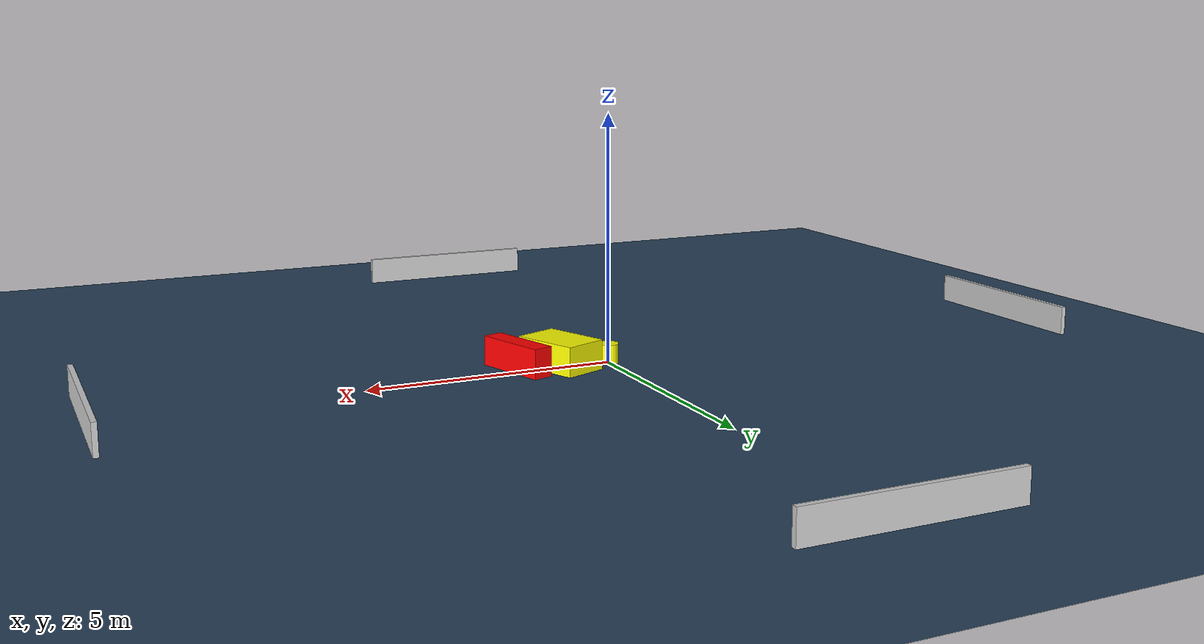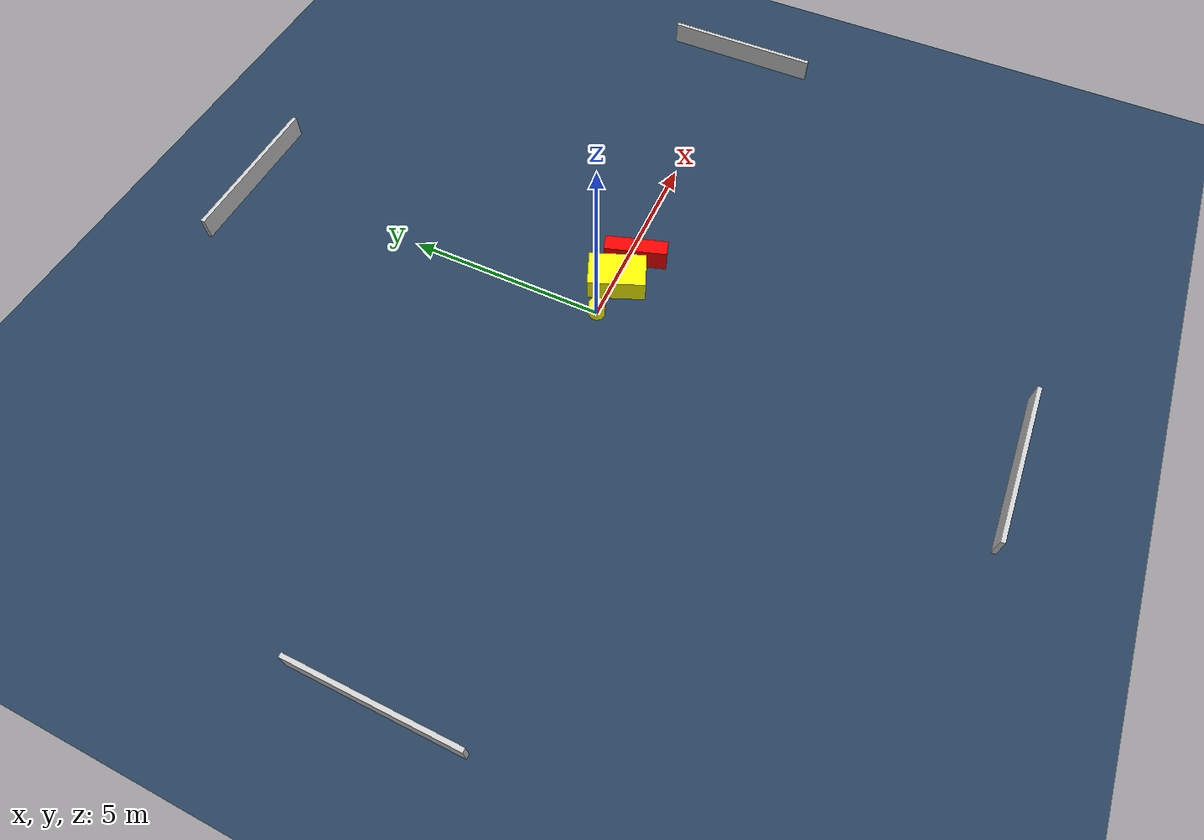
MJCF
<?xml version="1.0" ?>
<mujoco model="generated_environment">
  <option timestep="0.01" integrator="RK4" cone="elliptic"/>
  <default>
    <geom density="1"/>
  </default>
  <asset>
    <texture builtin="gradient" height="3072" name="skybox" rgb1="0.3 0.5 0.7" rgb2="0 0 0" type="skybox" width="512"/>
    <texture builtin="checker" height="300" name="groundplane" rgb1="0.2 0.3 0.4" rgb2="0.1 0.2 0.3" type="2d" width="300"/>
    <material name="groundplane" reflectance="0.2" texrepeat="5 5" texture="groundplane"/>
  </asset>
  <worldbody>
    <light dir="0 0 -1" directional="true" pos="0 0 1.5"/>
    <geom condim="3" friction="0.5 0.005 0.001" material="groundplane" name="floor" pos="0 0 0" size="0 0 0.05" type="plane"/>
    <body name="walls">
      <geom name="wall_1" condim="4" pos="-10.0 0.0 0.3" rgba="0.800000011920929 0.800000011920929 0.800000011920929 1.0" size="0.05 2.0 0.3" type="box"/>
      <geom name="wall_2" condim="4" pos="10.0 0.0 0.3" rgba="0.800000011920929 0.800000011920929 0.800000011920929 1.0" size="0.05 2.0 0.3" type="box"/>
      <geom name="wall_3" condim="4" pos="0.0 -10.0 0.3" rgba="0.800000011920929 0.800000011920929 0.800000011920929 1.0" size="2.0 0.05 0.3" type="box"/>
      <geom name="wall_4" condim="4" pos="0.0 10.0 0.3" rgba="0.800000011920929 0.800000011920929 0.800000011920929 1.0" size="2.0 0.05 0.3" type="box"/>
    </body>
    <body name="robot">
      <joint name="joint_x" type="slide" pos="0 0 0" axis="1 0 0"/>
      <joint name="joint_y" type="slide" pos="0 0 0" axis="0 1 0"/>
      <geom name="robot" type="cylinder" pos="0.0 0.0 0.2" size="0.2 0.2 0.0" mass="5.0" friction="1.0 0.005 0.0001" condim="4" rgba="1.0 1.0 0.0 1.0"/>
    </body>
    <body name="obstacle_1_movable">
      <geom name="obstacle_1_movable" condim="4" pos="1.020760414206302 -0.06719936564571073 0.3" euler="0 0 201.9626599815355" friction="0.0 0.005 0.001" rgba="1.0 1.0 0.0 1.0" size="0.4577863270198093 0.7073962000960763 0.3" type="box" mass="0.1"/>
      <joint type="free"/>
    </body>
    <body name="obstacle_2_static">
      <geom name="obstacle_2_static" condim="4" pos="1.888841108402047 -0.1920720667185951 0.3" euler="0 0 107.49798211953097" friction="0.0 0.005 0.001" rgba="1.0 0.0 0.0 1.0" size="0.7844464800027642 0.20218850608330483 0.3" type="box"/>
    </body>
  </worldbody>
  <actuator>
    <motor name="actuator_x" joint="joint_x" gear="1" ctrlrange="-1 1"/>
    <motor name="actuator_y" joint="joint_y" gear="1" ctrlrange="-1 1"/>
  </actuator>
</mujoco>
